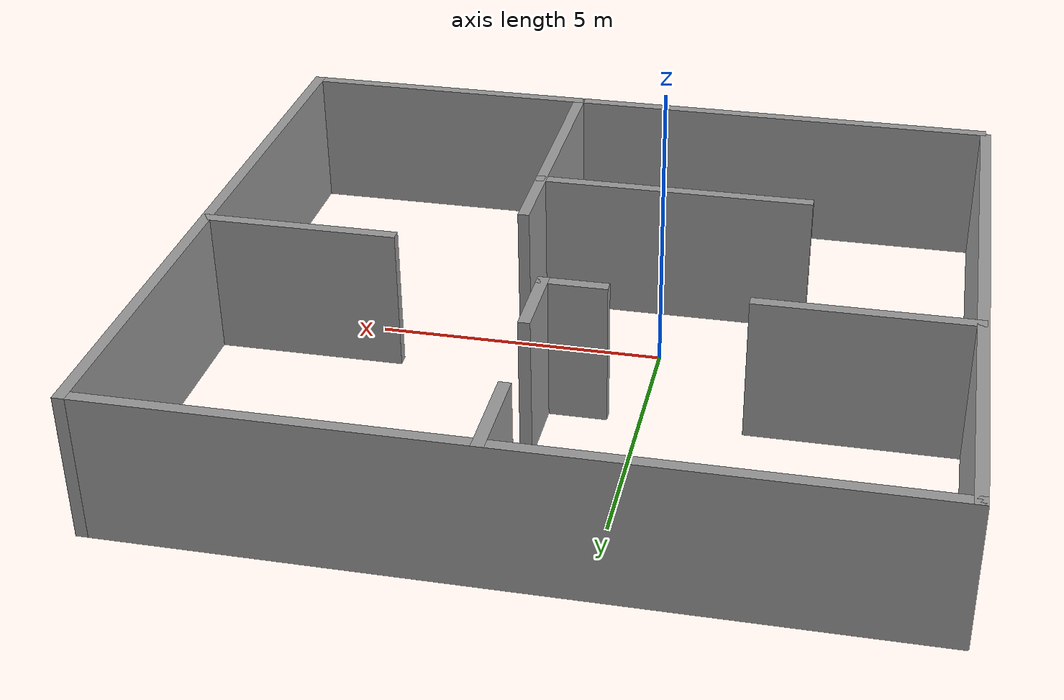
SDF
<?xml version='1.0'?>
<sdf version='1.4'>
  <model name='4rooms'>
    <link name='Wall_0'>
      <collision name='Wall_0_Collision'>
        <geometry>
          <box>
            <size>13.1929 0.2 2.5</size>
          </box>
        </geometry>
        <pose>0 0 1.25 0 -0 0</pose>
      </collision>
      <visual name='Wall_0_Visual'>
        <pose>0 0 1.25 0 -0 0</pose>
        <geometry>
          <box>
            <size>13.1929 0.2 2.5</size>
          </box>
        </geometry>
        <material>
          <script>
            <uri>file://media/materials/scripts/gazebo.material</uri>
            <name>Gazebo/Grey</name>
          </script>
        </material>
      </visual>
      <velocity_decay>
        <linear>0</linear>
        <angular>0</angular>
      </velocity_decay>
      <pose>1.26401 -5.097 0 0 0 -0.002708</pose>
    </link>
    <link name='Wall_1'>
      <collision name='Wall_1_Collision'>
        <geometry>
          <box>
            <size>11.9367 0.2 2.5</size>
          </box>
        </geometry>
        <pose>0 0 1.25 0 -0 0</pose>
      </collision>
      <visual name='Wall_1_Visual'>
        <pose>0 0 1.25 0 -0 0</pose>
        <geometry>
          <box>
            <size>11.9367 0.2 2.5</size>
          </box>
        </geometry>
        <material>
          <script>
            <uri>file://media/materials/scripts/gazebo.material</uri>
            <name>Gazebo/Grey</name>
          </script>
        </material>
      </visual>
      <velocity_decay>
        <linear>0</linear>
        <angular>0</angular>
      </velocity_decay>
      <pose>7.76047 0.753765 0 0 -0 1.5708</pose>
    </link>
    <link name='Wall_10'>
      <collision name='Wall_10_Collision'>
        <geometry>
          <box>
            <size>1.18501 0.2 2.5</size>
          </box>
        </geometry>
        <pose>0 0 1.25 0 -0 0</pose>
      </collision>
      <visual name='Wall_10_Visual'>
        <pose>0 0 1.25 0 -0 0</pose>
        <geometry>
          <box>
            <size>1.18501 0.2 2.5</size>
          </box>
        </geometry>
        <material>
          <script>
            <uri>file://media/materials/scripts/gazebo.material</uri>
            <name>Gazebo/Grey</name>
          </script>
        </material>
      </visual>
      <velocity_decay>
        <linear>0</linear>
        <angular>0</angular>
      </velocity_decay>
      <pose>1.14686 1.97847 0 0 -0 0</pose>
    </link>
    <link name='Wall_11'>
      <collision name='Wall_11_Collision'>
        <geometry>
          <box>
            <size>1.46643 0.2 2.5</size>
          </box>
        </geometry>
        <pose>0 0 1.25 0 -0 0</pose>
      </collision>
      <visual name='Wall_11_Visual'>
        <pose>0 0 1.25 0 -0 0</pose>
        <geometry>
          <box>
            <size>1.46643 0.2 2.5</size>
          </box>
        </geometry>
        <material>
          <script>
            <uri>file://media/materials/scripts/gazebo.material</uri>
            <name>Gazebo/Grey</name>
          </script>
        </material>
      </visual>
      <velocity_decay>
        <linear>0</linear>
        <angular>0</angular>
      </velocity_decay>
      <pose>1.63936 2.61168 0 0 -0 1.5708</pose>
    </link>
    <link name='Wall_14'>
      <collision name='Wall_14_Collision'>
        <geometry>
          <box>
            <size>3.47162 0.2 2.5</size>
          </box>
        </geometry>
        <pose>0 0 1.25 0 -0 0</pose>
      </collision>
      <visual name='Wall_14_Visual'>
        <pose>0 0 1.25 0 -0 0</pose>
        <geometry>
          <box>
            <size>3.47162 0.2 2.5</size>
          </box>
        </geometry>
        <material>
          <script>
            <uri>file://media/materials/scripts/gazebo.material</uri>
            <name>Gazebo/Grey</name>
          </script>
        </material>
      </visual>
      <velocity_decay>
        <linear>0</linear>
        <angular>0</angular>
      </velocity_decay>
      <pose>6.12465 0.958283 0 0 -0 3.14159</pose>
    </link>
    <link name='Wall_16'>
      <collision name='Wall_16_Collision'>
        <geometry>
          <box>
            <size>4.98431 0.2 2.5</size>
          </box>
        </geometry>
        <pose>0 0 1.25 0 -0 0</pose>
      </collision>
      <visual name='Wall_16_Visual'>
        <pose>0 0 1.25 0 -0 0</pose>
        <geometry>
          <box>
            <size>4.98431 0.2 2.5</size>
          </box>
        </geometry>
        <material>
          <script>
            <uri>file://media/materials/scripts/gazebo.material</uri>
            <name>Gazebo/Grey</name>
          </script>
        </material>
      </visual>
      <velocity_decay>
        <linear>0</linear>
        <angular>0</angular>
      </velocity_decay>
      <pose>2.44848 -2.66513 0 0 -0 1.5708</pose>
    </link>
    <link name='Wall_18'>
      <collision name='Wall_18_Collision'>
        <geometry>
          <box>
            <size>4.94913 0.2 2.5</size>
          </box>
        </geometry>
        <pose>0 0 1.25 0 -0 0</pose>
      </collision>
      <visual name='Wall_18_Visual'>
        <pose>0 0 1.25 0 -0 0</pose>
        <geometry>
          <box>
            <size>4.94913 0.2 2.5</size>
          </box>
        </geometry>
        <material>
          <script>
            <uri>file://media/materials/scripts/gazebo.material</uri>
            <name>Gazebo/Grey</name>
          </script>
        </material>
      </visual>
      <velocity_decay>
        <linear>0</linear>
        <angular>0</angular>
      </velocity_decay>
      <pose>0.073908 -1.60977 0 0 -0 3.14159</pose>
    </link>
    <link name='Wall_2'>
      <collision name='Wall_2_Collision'>
        <geometry>
          <box>
            <size>13.2866 0.2 2.5</size>
          </box>
        </geometry>
        <pose>0 0 1.25 0 -0 0</pose>
      </collision>
      <visual name='Wall_2_Visual'>
        <pose>0 0 1.25 0 -0 0</pose>
        <geometry>
          <box>
            <size>13.2866 0.2 2.5</size>
          </box>
        </geometry>
        <material>
          <script>
            <uri>file://media/materials/scripts/gazebo.material</uri>
            <name>Gazebo/Grey</name>
          </script>
        </material>
      </visual>
      <velocity_decay>
        <linear>0</linear>
        <angular>0</angular>
      </velocity_decay>
      <pose>1.21722 6.62209 0 0 0 -3.14159</pose>
    </link>
    <link name='Wall_3'>
      <collision name='Wall_3_Collision'>
        <geometry>
          <box>
            <size>11.7738 0.2 2.5</size>
          </box>
        </geometry>
        <pose>0 0 1.25 0 -0 0</pose>
      </collision>
      <visual name='Wall_3_Visual'>
        <pose>0 0 1.25 0 -0 0</pose>
        <geometry>
          <box>
            <size>11.7738 0.2 2.5</size>
          </box>
        </geometry>
        <material>
          <script>
            <uri>file://media/materials/scripts/gazebo.material</uri>
            <name>Gazebo/Grey</name>
          </script>
        </material>
      </visual>
      <velocity_decay>
        <linear>0</linear>
        <angular>0</angular>
      </velocity_decay>
      <pose>-5.32603 0.835157 0 0 0 -1.5708</pose>
    </link>
    <link name='Wall_5'>
      <collision name='Wall_5_Collision'>
        <geometry>
          <box>
            <size>3.6827 0.2 2.5</size>
          </box>
        </geometry>
        <pose>0 0 1.25 0 -0 0</pose>
      </collision>
      <visual name='Wall_5_Visual'>
        <pose>0 0 1.25 0 -0 0</pose>
        <geometry>
          <box>
            <size>3.6827 0.2 2.5</size>
          </box>
        </geometry>
        <material>
          <script>
            <uri>file://media/materials/scripts/gazebo.material</uri>
            <name>Gazebo/Grey</name>
          </script>
        </material>
      </visual>
      <velocity_decay>
        <linear>0</linear>
        <angular>0</angular>
      </velocity_decay>
      <pose>-3.5495 1.97847 0 0 -0 0</pose>
    </link>
    <link name='Wall_8'>
      <collision name='Wall_8_Collision'>
        <geometry>
          <box>
            <size>1.67751 0.2 2.5</size>
          </box>
        </geometry>
        <pose>0 0 1.25 0 -0 0</pose>
      </collision>
      <visual name='Wall_8_Visual'>
        <pose>0 0 1.25 0 -0 0</pose>
        <geometry>
          <box>
            <size>1.67751 0.2 2.5</size>
          </box>
        </geometry>
        <material>
          <script>
            <uri>file://media/materials/scripts/gazebo.material</uri>
            <name>Gazebo/Grey</name>
          </script>
        </material>
      </visual>
      <velocity_decay>
        <linear>0</linear>
        <angular>0</angular>
      </velocity_decay>
      <pose>1.53383 5.88331 0 0 0 -1.5708</pose>
    </link>
    <static>1</static>
  </model>
</sdf>
